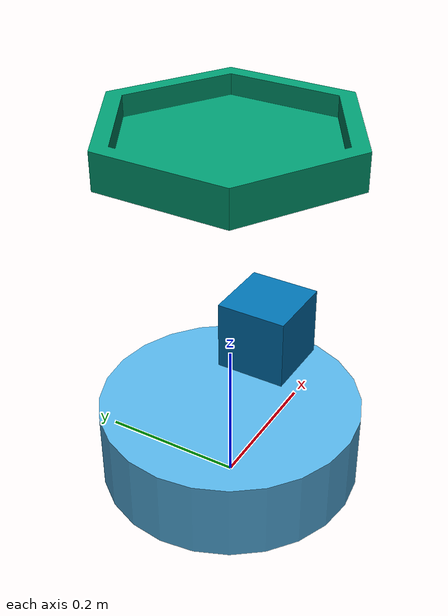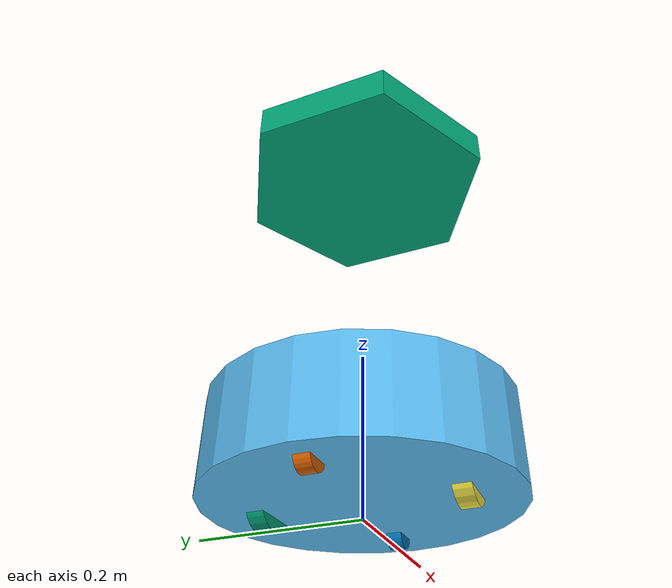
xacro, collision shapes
<?xml version="1.0"?>

<robot name="barista" xmlns:xacro="http://ros.org/wiki/xacro">

  <xacro:arg name="robot_name" default="barista_X"/>
  <xacro:property name="robot_name_prop" value="$(arg robot_name)"/>

  <xacro:include filename="$(find barista_description)/robot/common_properties.xacro"/>
  <xacro:include filename="$(find barista_description)/robot/barista_properties.xacro"/>
  <!-- Bases -->
  <xacro:include filename="$(find barista_description)/robot/barista_kobuki.xacro" />

  <xacro:include filename="$(find barista_description)/robot/barista_mod.xacro" />
  <xacro:include filename="$(find barista_description)/robot/barista_hokuyo.xacro" />

  <xacro:barista_kobuki robot_name="$(arg robot_name)"/>

  <xacro:if value="${'barista' in robot_name_prop}">
    <xacro:barista_mod  bottom_parent="base_link" top_parent="base_link"/>
  </xacro:if>

  <xacro:if value="${'mule' in robot_name_prop}">
    <xacro:barista_mod_mule  bottom_parent="base_link" top_parent="base_link"/>
  </xacro:if>

  <xacro:barista_hokuyo  parent="base_link" x_hok="0.103007" y_hok="0.0" z_hok="0.17" robot_name="$(arg robot_name)"/>

</robot>

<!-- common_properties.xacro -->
<!--
  Various useful properties such as constants and materials
 -->
<robot name="xacro_properties" xmlns:xacro="http://ros.org/wiki/xacro">

  <xacro:property name="M_PI" value="3.1415926535897931" />

  <xacro:property name="material_white">
    <material name="white">
      <color rgba="1 1 1 1"/>
    </material>
  </xacro:property>
  <xacro:property name="material_grey">
    <material name="grey">
      <color rgba="0.5 0.5 0.5 1"/>
    </material>
  </xacro:property>
  <xacro:property name="material_light_grey">
    <material name="light_grey">
      <color rgba="0.6 0.6 0.6 1"/>
    </material>
  </xacro:property>
  <xacro:property name="material_dark_grey">
    <material name="dark_grey">
      <color rgba="0.3 0.3 0.3 1"/>
    </material>
  </xacro:property>
  <xacro:property name="material_black">
    <material name="black">
      <color rgba="0.1 0.1 0.1 1"/>
    </material>
  </xacro:property>
  <xacro:property name="material_red">
    <material name="red">
      <color rgba="1 0 0 1"/>
    </material>
  </xacro:property>
  <xacro:property name="material_green">
    <material name="green">
      <color rgba="0.0 0.8 0.0 1"/>
    </material>
  </xacro:property>
  <xacro:property name="material_blue">
    <material name="blue">
      <color rgba="0.0 0.0 1.0 1"/>
    </material>
  </xacro:property>
  <xacro:property name="material_grey_blue">
    <material name="grey_blue">
      <color rgba="0.4 0.4 1.0 1"/>
    </material>
  </xacro:property>
  <xacro:property name="material_orange">
    <material name="orange">
      <color rgba="1.0 0.7 0.0 1"/>
    </material>
  </xacro:property>

</robot>

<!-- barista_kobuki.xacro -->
<robot name="barista_kobuki" xmlns:xacro="http://ros.org/wiki/xacro">

  <xacro:arg name="robot_name" default="barista_X"/>

  <xacro:include filename="$(find barista_description)/robot/kobuki/common_properties.urdf.xacro"/>
  <xacro:include filename="$(find barista_description)/robot/barista_kobuki_gazebo.xacro"/>

  <!-- Kobuki -->
  <xacro:macro name="barista_kobuki" params="robot_name">

    <link name="base_footprint"/>
    <joint name="base_joint" type="fixed">
      <origin xyz="0 0 0.0102" rpy="0 0 0" />
      <parent link="base_footprint"/>
      <child link="base_link" />
    </joint>
    <link name="base_link">
      <visual>
        <geometry>
          <!-- new mesh -->
          <mesh filename="package://barista_description/meshes/kobuki/main_body.dae" />
        </geometry>
        <origin xyz="0.001 0 0.05199" rpy="0 0 0"/>
      </visual>
      <collision>
        <geometry>
          <cylinder length="0.10938" radius="0.178"/>
        </geometry>
        <origin xyz="0.0 0 0.05949" rpy="0 0 0"/>
      </collision>
      <inertial>
        <!-- COM experimentally determined -->
        <origin xyz="0.01 0 0"/>
        <mass value="2.4"/> <!-- 2.4/2.6 kg for small/big battery pack -->
        <inertia ixx="0.019995" ixy="0.0" ixz="0.0"
                 iyy="0.019995" iyz="0.0"
                 izz="0.03675" />
      </inertial>
    </link>

    <joint name="${robot_name}/joint_tire_left" type="continuous">
    <parent link="base_link"/>
    <child link="${robot_name}/wheel_left_link"/>
    <origin rpy="-1.5707963267948966 0 0" xyz="0.00 0.115 0.0250"/>
    <axis xyz="0 0 1"/>
  </joint>
  <link name="${robot_name}/wheel_left_link">
    <visual>
      <geometry>
        <mesh filename="package://barista_description/meshes/wheel.dae"/>
      </geometry>
      <origin rpy="0 0 0" xyz="0 0 0"/>
    </visual>
    <collision>
      <geometry>
        <cylinder length="0.0206" radius="0.0352"/>
      </geometry>
      <origin rpy="0 0 0" xyz="0 0 0"/>
    </collision>
    <inertial>
      <mass value="0.01"/>
      <origin xyz="0 0 0"/>
      <inertia ixx="0.001" ixy="0.0" ixz="0.0" iyy="0.001" iyz="0.0" izz="0.001"/>
    </inertial>
  </link>
  <joint name="${robot_name}/joint_tire_right" type="continuous">
    <parent link="base_link"/>
    <child link="${robot_name}/wheel_right_link"/>
    <origin rpy="-1.5707963267948966 0 0" xyz="0.00 -0.115 0.0250"/>
    <axis xyz="0 0 1"/>
  </joint>
  <link name="${robot_name}/wheel_right_link">
    <visual>
      <geometry>
        <mesh filename="package://barista_description/meshes/wheel.dae"/>
      </geometry>
      <origin rpy="0 0 0" xyz="0 0 0"/>
    </visual>
    <collision>
      <geometry>
        <cylinder length="0.0206" radius="0.0350"/>
      </geometry>
      <origin rpy="0 0 0" xyz="0 0 0"/>
    </collision>
    <inertial>
      <mass value="0.01"/>
      <origin xyz="0 0 0"/>
      <inertia ixx="0.001" ixy="0.0" ixz="0.0" iyy="0.001" iyz="0.0" izz="0.001"/>
    </inertial>
  </link>

    <joint name="caster_front_joint" type="fixed">
      <parent link="base_link"/>
      <child link="caster_front_link"/>
      <origin xyz="0.115 0.0 0.007" rpy="${-M_PI/2} 0 0"/>
    </joint>
    <link name="caster_front_link">
      <collision>
        <geometry>
          <cylinder length="0.0176" radius="0.017"/>
        </geometry>
        <origin rpy="0 0 0" xyz="0 0 0"/>
      </collision>
      <inertial>
        <mass value="0.01" />
        <origin xyz="0 0 0" />
        <inertia ixx="0.001" ixy="0.0" ixz="0.0"
                 iyy="0.001" iyz="0.0"
                 izz="0.001" />
      </inertial>
    </link>

    <joint name="caster_back_joint" type="fixed">
      <parent link="base_link"/>
      <child link="caster_back_link"/>
      <origin xyz="-0.135 0.0 0.009" rpy="${-M_PI/2} 0 0"/>
    </joint>
    <link name="caster_back_link">
      <collision>
        <geometry>
          <cylinder length="0.0176" radius="0.017"/>
        </geometry>
        <origin rpy="0 0 0" xyz="0 0 0"/>
      </collision>
      <inertial>
        <mass value="0.01" />
        <origin xyz="0 0 0" />
        <inertia ixx="0.001" ixy="0.0" ixz="0.0"
                 iyy="0.001" iyz="0.0"
                 izz="0.001" />
      </inertial>
    </link>

    <!-- Kobuki's sensors -->
    <joint name="gyro_joint" type="fixed">
      <axis xyz="0 1 0"/>
      <origin xyz="0.056 0.062 0.0202" rpy="0 0 0"/>
      <parent link="base_link"/>
      <child link="gyro_link"/>
    </joint>
    <link name="gyro_link">
      <inertial>
        <mass value="0.001"/>
        <origin xyz="0 0 0" rpy="0 0 0"/>
        <inertia ixx="0.0001" ixy="0" ixz="0"
                 iyy="0.000001" iyz="0"
                 izz="0.0001"/>
      </inertial>
    </link>

    <joint name="cliff_sensor_left_joint" type="fixed">
      <origin xyz="0.08734 0.13601 0.0214" rpy="0 ${M_PI/2} 0" />
      <parent link="base_link"/>
      <child link="cliff_sensor_left_link" />
    </joint>
    <link name="cliff_sensor_left_link">
      <inertial>
        <mass value="0.0001" />
        <origin xyz="0 0 0" />
        <inertia ixx="0.0001" ixy="0.0" ixz="0.0"
                 iyy="0.0001" iyz="0.0"
                 izz="0.0001" />
      </inertial>
    </link>

    <joint name="cliff_sensor_right_joint" type="fixed">
      <origin xyz="0.085 -0.13601 0.0214" rpy="0 ${M_PI/2} 0" />
      <parent link="base_link"/>
      <child link="cliff_sensor_right_link" />
    </joint>
    <link name="cliff_sensor_right_link">
      <inertial>
        <mass value="0.0001" />
        <origin xyz="0 0 0" />
        <inertia ixx="0.0001" ixy="0.0" ixz="0.0"
                 iyy="0.0001" iyz="0.0"
                 izz="0.0001" />
      </inertial>
    </link>

    <joint name="cliff_sensor_front_joint" type="fixed">
      <origin xyz="0.156 0.00 0.0214" rpy="0 ${M_PI/2} 0" />
      <parent link="base_link"/>
      <child link="cliff_sensor_front_link" />
    </joint>
    <link name="cliff_sensor_front_link">
      <inertial>
        <mass value="0.0001" />
        <origin xyz="0 0 0" />
        <inertia ixx="0.0001" ixy="0.0" ixz="0.0"
                 iyy="0.0001" iyz="0.0"
                 izz="0.0001" />
      </inertial>
    </link>

    <!-- Kobuki Gazebo simulation details -->
    <xacro:kobuki_sim robot_name="$(arg robot_name)"/>

  </xacro:macro>

</robot>

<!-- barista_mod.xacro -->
<!--
  Hexagon stacks
 -->
<robot name="stack_hexagons" xmlns:xacro="http://ros.org/wiki/xacro">
  <xacro:include filename="$(find barista_description)/robot/turtlebot/common_properties.urdf.xacro"/>

  <xacro:macro name="barista_mod" params="bottom_parent top_parent ">

    <link name="barista_top_link">
      <visual>
        <origin xyz="0 0 0" rpy="0 0 0"/>
        <geometry>
          <xacro:if value="${robot_name_prop == 'barista_1'}">
            <mesh filename="package://barista_description/meshes/barista/TOP_colour_1.dae"/>
          </xacro:if>
          <xacro:if value="${robot_name_prop == 'barista_2'}">
            <mesh filename="package://barista_description/meshes/barista/TOP_colour_2.dae"/>
          </xacro:if>
          <xacro:if value="${robot_name_prop != 'barista_1' and robot_name_prop != 'barista_2'}">
            <mesh filename="package://barista_description/meshes/barista/TOP_colour.dae"/>
          </xacro:if>
        </geometry>
      </visual>
      <collision>
        <origin xyz="0 0 0" rpy="0 0 0"/>
        <geometry>
          <mesh filename="package://barista_description/meshes/barista/TOP_collision_lip_sd.stl"/>
        </geometry>
      </collision>
      <inertial>
        <mass value="0.1" />
        <origin xyz="0 0 0" />
        <inertia ixx="0.00083462153339" ixy="0.0" ixz="0.0"
                 iyy="0.00083462153339" iyz="0.0"
                 izz="0.00154882640011" />
      </inertial>
    </link>

    <joint name="barista_top_joint" type="fixed">
      <origin xyz="-0.01364 0.0  0.3966" rpy="0 0 0"/>
      <parent link="${top_parent}"/>
      <child link="barista_top_link"/>
    </joint>

    <link name="barista_bottom_link">
      <visual>
        <origin xyz="0 0 0" rpy="0 0 0"/>
        <geometry>
          <xacro:if value="${robot_name_prop == 'barista_1'}">
            <mesh filename="package://barista_description/meshes/barista/BOTTOM_colour_1.dae"/>
          </xacro:if>
          <xacro:if value="${robot_name_prop == 'barista_2'}">
            <mesh filename="package://barista_description/meshes/barista/BOTTOM_colour_2.dae"/>
          </xacro:if>
          <xacro:if value="${robot_name_prop != 'barista_1' and robot_name_prop != 'barista_2'}">
            <mesh filename="package://barista_description/meshes/barista/BOTTOM_colour.dae"/>
          </xacro:if>
        </geometry>
      </visual>
      <inertial>
        <mass value="0.1" />
        <origin xyz="0 0 0" />
        <inertia ixx="0.00093774653339" ixy="0.0" ixz="0.0"
                 iyy="0.00093774653339" iyz="0.0"
                 izz="0.00154882640011" />
      </inertial>
    </link>

    <joint name="barista_bottom_joint" type="fixed">
      <origin xyz="0.001 0.0 0.12" rpy="0 0 0"/>
      <parent link="${bottom_parent}"/>
      <child link="barista_bottom_link"/>
    </joint>

  </xacro:macro>

  <!-- Mule Related -->
  <xacro:macro name="barista_mod_mule" params="bottom_parent top_parent">

    <link name="barista_top_link">
      <visual>
        <origin xyz="0 0 0" rpy="0 0 0"/>
        <geometry>
          <mesh filename="package://barista_description/meshes/barista/TOP_mule.dae"/>
        </geometry>
      </visual>
      <collision>
        <origin xyz="0 0 0" rpy="0 0 0"/>
        <geometry>
          <mesh filename="package://barista_description/meshes/barista/TOP_mule_col_sd.stl"/>
        </geometry>
      </collision>
      <inertial>
        <mass value="0.1" />
        <origin xyz="0 0 0" />
        <inertia ixx="0.00083462153339" ixy="0.0" ixz="0.0"
                 iyy="0.00083462153339" iyz="0.0"
                 izz="0.00154882640011" />
      </inertial>
    </link>

    <joint name="barista_top_joint" type="fixed">
      <origin xyz="0.00364 0.0 0.24583" rpy="0 0 0"/>
      <parent link="${top_parent}"/>
      <child link="barista_top_link"/>
    </joint>

    <link name="barista_bottom_link">
      <visual>
        <origin xyz="0 0 0" rpy="0 0 0"/>
        <geometry>
          <mesh filename="package://barista_description/meshes/barista/BOTTOM_mule.dae"/>
        </geometry>
      </visual>
      <inertial>
        <mass value="0.1" />
        <origin xyz="0 0 0" />
        <inertia ixx="0.00093774653339" ixy="0.0" ixz="0.0"
                 iyy="0.00093774653339" iyz="0.0"
                 izz="0.00154882640011" />
      </inertial>
    </link>

    <joint name="barista_bottom_joint" type="fixed">
      <origin xyz="0.001 0.0 0.12" rpy="0 0 0"/>
      <parent link="${bottom_parent}"/>
      <child link="barista_bottom_link"/>
    </joint>

  </xacro:macro>

</robot>

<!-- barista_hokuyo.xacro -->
<robot name="hokuyo" xmlns:xacro="http://ros.org/wiki/xacro">

  <xacro:macro name="barista_hokuyo" params="parent x_hok y_hok z_hok robot_name">

    <link name="laser_sensor_link">
	    <inertial>
		    <mass value="1e-5"/>
		    <origin xyz="0 0 0" rpy="0 0 0"/>
		    <inertia ixx="1e-6" ixy="0" ixz="0" iyy="1e-6" iyz="0" izz="1e-6"/>
	    </inertial>
	    <collision>
		    <origin xyz="0 0 0" rpy="0 0 0"/>
		    <geometry>
			    <box size="0.1 0.1 0.1"/>
		    </geometry>
	    </collision>
	    <visual>
		    <origin xyz="0 0 0" rpy="0 0 0"/>
		    <geometry>
			    <mesh filename="package://barista_description/meshes/turtlebot/sensors/hokuyo.dae"/>
		    </geometry>
	    </visual>
    </link>

    <joint name="laser_sensor_joint" type="fixed">
    	<origin xyz="${x_hok} ${y_hok} ${z_hok}" rpy="0 0 0"/>
    	<parent link="${parent}"/>
    	<child link="laser_sensor_link"/>
    </joint>

    <gazebo reference="laser_sensor_link">
  		<sensor name="lidar" type="ray">
			<always_on>true</always_on>
			<visualize>false</visualize>
			<update_rate>20</update_rate>
			<ray>
				<scan>
					<horizontal>
					<samples>128</samples>
					<resolution>1.000000</resolution>
					<min_angle>0.000000</min_angle>
					<max_angle>6.280000</max_angle>
					</horizontal>
				</scan>
				<range>
					<min>0.120000</min>
					<max>3.5</max>
					<resolution>0.015000</resolution>
				</range>
				<noise>
					<type>gaussian</type>
					<mean>0.0</mean>
					<stddev>0.01</stddev>
				</noise>
			</ray>
			<plugin name="scan" filename="libgazebo_ros_ray_sensor.so">
				<ros>
					<namespace>${robot_name}</namespace>
					<remapping>~/out:=scan</remapping>
				</ros>
				<output_type>sensor_msgs/LaserScan</output_type>
				<frame_name>${robot_name}/laser_sensor_link</frame_name>
			</plugin>

		</sensor>
  	</gazebo>

  </xacro:macro>

</robot>
